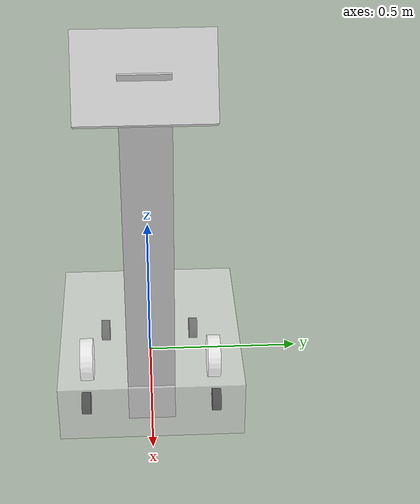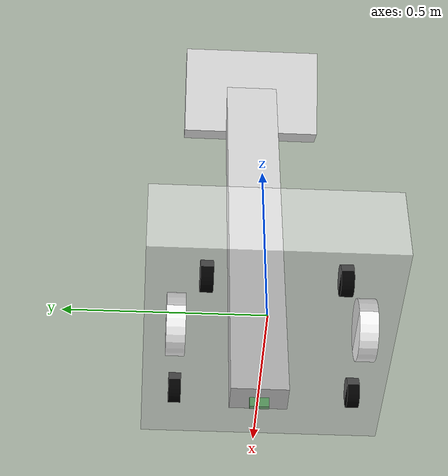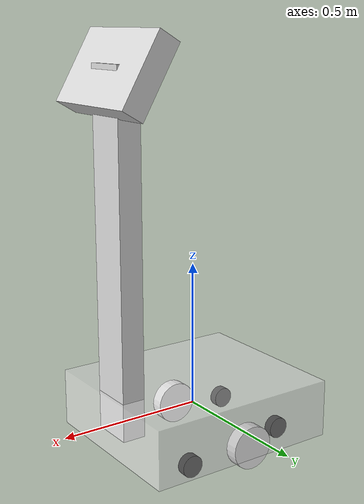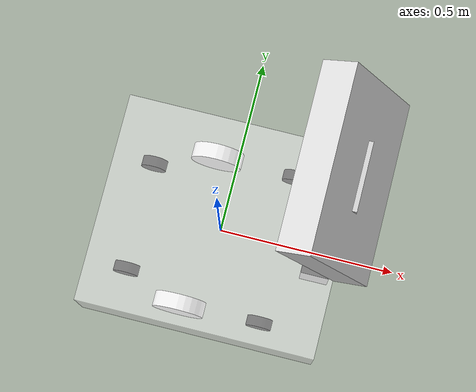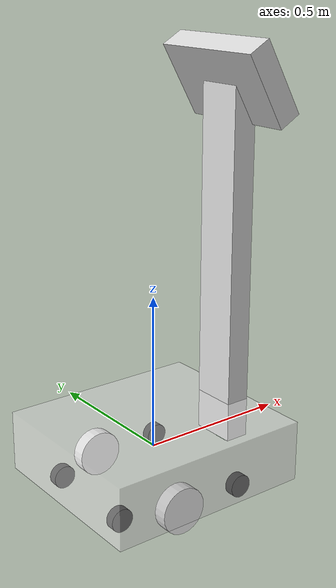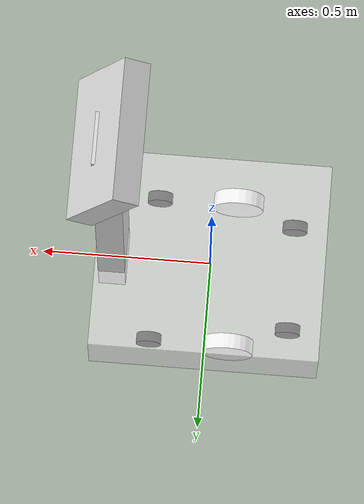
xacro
<?xml version="1.0"?>
<robot name="gobot" xmlns:xacro="http://www.ros.org/wiki/xacro">

  <xacro:include filename="$(find mybot_description)/urdf/mybot.gazebo" />
  <xacro:include filename="$(find mybot_description)/urdf/materials.xacro" />
  <xacro:include filename="$(find mybot_description)/urdf/macros.xacro" />

  <link name="base_footprint" />

  <joint name="base_joint" type="fixed">
    <parent link="base_footprint"/>
    <child link="base_link"/>
  </joint>

  <link name="base_link">
    <collision>
      <origin xyz="0 0 0" rpy="0 0 0"/>
      <geometry>
        <box size="0.680 .600 .200"/>
      </geometry>
    </collision>
    <visual>
      <origin xyz="0 0 0" rpy="0 0 0"/>
      <geometry>
        <box size="0.680 .600 .200"/>
      </geometry>
      <material name="white">
         <color rgba="1 1 1 .5"/>
      </material>
    </visual>
    <inertial>
      <origin xyz="0 0 0" rpy="0 0 0"/>
      <mass value="50"/>
      <box_inertia m="50" x=".680" y=".600" z=".200"/>
    </inertial>
  </link>

  <joint name="laser" type="fixed">
    <origin xyz="0.288 0.00 -0.03" rpy="0 0 0" />
    <parent link="base_link" />
    <child link="base_laser" />
  </joint>

  <link name="base_laser">
    <visual>
      <geometry>
        <box size="0.01 0.05 0.06" />
      </geometry>
      <material name="Green" />
    </visual>
    <inertial>
      <mass value="0.000001" />
      <origin xyz="0 0 0" rpy="0 0 0"/>
      <inertia ixx="0.0001" ixy="0.0" ixz="0.0" iyy="0.0001" iyz="0.0" izz="0.0001" />
    </inertial>
  </link>

  <link name="tyer_front_left">
    <visual>
      <geometry>
       <cylinder length=".03" radius="0.037"></cylinder>
      </geometry>
      <material name="black">
          <color rgba="0 0 0 1"/>
      </material>
    </visual>
  </link>

  <link name="tyer_front_right">
    <visual>
      <geometry>
       <cylinder length=".03" radius="0.037"></cylinder>
      </geometry>
      <material name="black">
          <color rgba="0 0 0 1"/>
      </material>
    </visual>
  </link>

  <link name="tyer_middle_left">
    <visual>
      <geometry>
       <cylinder length=".045" radius="0.075"></cylinder>
      </geometry>
      <material name="white">
          <color rgba="1 1 1 1"/>
      </material>
    </visual>
  </link>

 <link name="tyer_middle_right">
    <visual>
      <geometry>
       <cylinder length=".045" radius="0.075"></cylinder>
      </geometry>
      <material name="white">
          <color rgba="1 1 1 1"/>
      </material>
    </visual>
  </link>

  <link name="tyer_back_left">
    <visual>
      <geometry>
       <cylinder length=".03" radius="0.037"></cylinder>
      </geometry>
      <material name="black">
          <color rgba="0 0 0 1"/>
      </material>
    </visual>
  </link>

 <link name="tyer_back_right">
    <visual>
      <geometry>
       <cylinder length=".03" radius="0.037"></cylinder>
      </geometry>
      <material name="black">
          <color rgba="0 0 0 1"/>
      </material>
    </visual>
  </link>

  <joint name="base_to_front_left" type="continuous">
    <origin rpy="1.57075  0  0" xyz="0.167  0.220  -0.0978"/>
    <parent link="base_link"/>
    <child link="tyer_front_left"/>
    <axis xyz="0 0 1"/>
  </joint>

  <joint name="base_to_front_right" type="continuous">
    <origin rpy="1.57075  0  0" xyz="0.167  -0.220  -0.0978"/>
    <parent link="base_link"/>
    <child link="tyer_front_right"/>
    <axis xyz="0 0 1"/>
  </joint>

  <joint name="base_to_middle_left" type="continuous">
    <origin rpy="1.57075  0  0" xyz="-0.07  0.225  -0.095"/>
    <parent link="base_link"/>
    <child link="tyer_middle_left"/>
    <axis xyz="0 0 1"/>
  </joint>

  <joint name="base_to_middle_right" type="continuous">
    <origin rpy="1.57075  0  0" xyz="-0.07  -0.225  -0.095"/>
    <parent link="base_link"/>
    <child link="tyer_middle_right"/>
    <axis xyz="0 0 1"/>
  </joint>

  <joint name="base_to_back_left" type="continuous">
    <origin rpy="1.57075  0  0" xyz="-0.245  0.16  -0.0978"/>
    <parent link="base_link"/>
    <child link="tyer_back_left"/>
    <axis xyz="0 0 1"/>
  </joint>

  <joint name="base_to_back_right" type="continuous">
    <origin rpy="1.57075  0  0" xyz="-0.245  -0.16  -0.0978"/>
    <parent link="base_link"/>
    <child link="tyer_back_right"/>
    <axis xyz="0 0 1"/>
  </joint>

  <link name="pillar_front">
    <visual>
      <geometry>
        <box size="0.08 .15 1.2"/>
      </geometry>
      <material name="silver">
          <color rgba=".86 .86 .86 1"/>
      </material>
    </visual>
  </link>

  <joint name="base_to_pillar_front_left" type="fixed">
    <origin xyz="0.288  0.0  0.5685"/>
    <parent link="base_link"/>
    <child link="pillar_front"/>
  </joint>

  <link name="robot_head">
    <visual>
      <geometry>
        <box size="0.08 .40 0.26"/>
      </geometry>
      <material name="silver">
          <color rgba=".86 .86 .86 1"/>
      </material>
    </visual>
  </link>

  <joint name="pillar_to_head" type="fixed">
    <origin rpy="0  -0.5235  0" xyz="0.0  0.0  0.5715"/>
    <parent link="pillar_front"/>
    <child link="robot_head"/>
  </joint>

  <property name="M_PI" value="3.14159"/>
  <property name="SCALE" value="0.0254"/>
</robot>

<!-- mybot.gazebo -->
<gazebo reference="chassis">
  <material>Gazebo/Orange</material>
</gazebo>

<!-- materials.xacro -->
<robot>
<material name="black">
  <color rgba="0.0 0.0 0.0 1.0"/>
</material>

<material name="blue">
  <color rgba="0.0 0.0 0.8 1.0"/>
</material>

<material name="green">
  <color rgba="0.0 0.8 0.0 1.0"/>
</material>

<material name="grey">
  <color rgba="0.2 0.2 0.2 1.0"/>
</material>

<material name="orange">
  <color rgba="${255/255} ${108/255} ${10/255} 1.0"/>
</material>

<material name="brown">
  <color rgba="${222/255} ${207/255} ${195/255} 1.0"/>
</material>

<material name="red">
  <color rgba="0.8 0.0 0.0 1.0"/>
</material>

<material name="white">
  <color rgba="1.0 1.0 1.0 1.0"/>
</material>
</robot>

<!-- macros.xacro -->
<robot name="mybot" xmlns:xacro="http://www.ros.org/wiki/xacro">

<macro name="cylinder_inertia" params="m r h">
  <inertia  ixx="${m*(3*r*r+h*h)/12}" ixy = "0" ixz = "0"
    iyy="${m*(3*r*r+h*h)/12}" iyz = "0"
    izz="${m*r*r/2}"
  />
</macro>

<macro name="box_inertia" params="m x y z">
  <inertia  ixx="${m*(y*y+z*z)/12}" ixy = "0" ixz = "0"
    iyy="${m*(x*x+z*z)/12}" iyz = "0"
    izz="${m*(x*x+z*z)/12}"
  />
</macro>

<macro name="sphere_inertia" params="m r">
  <inertia  ixx="${2*m*r*r/5}" ixy = "0" ixz = "0"
    iyy="${2*m*r*r/5}" iyz = "0"
    izz="${2*m*r*r/5}"
  />
</macro>

</robot>
